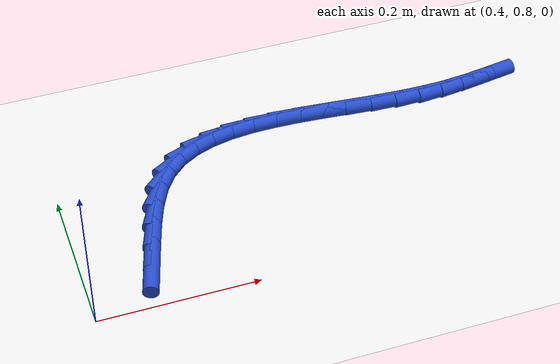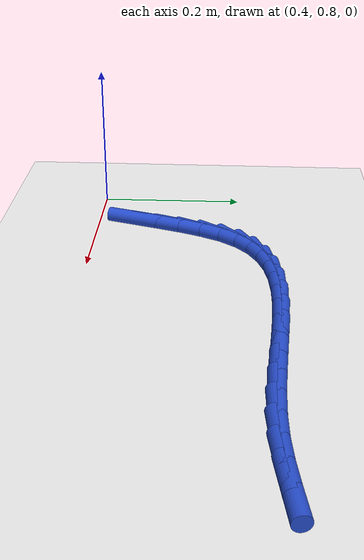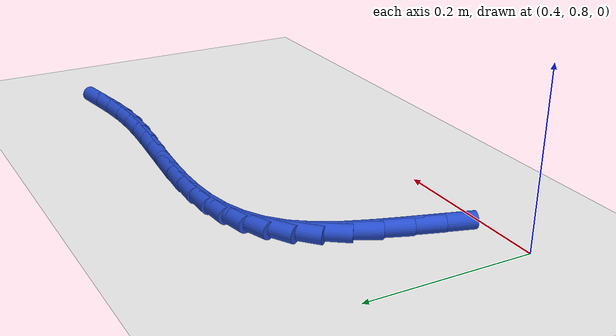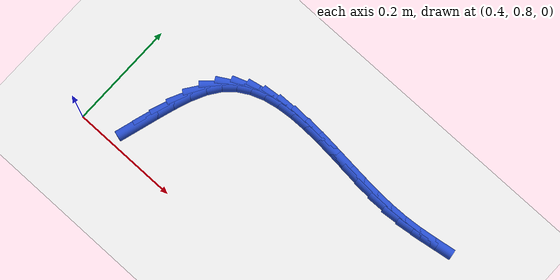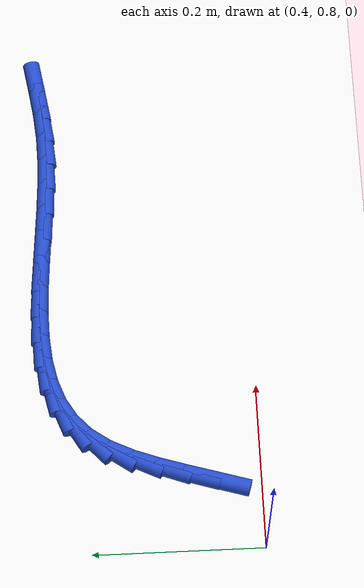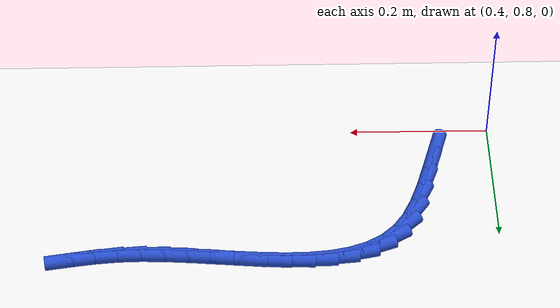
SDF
<sdf version="1.6">
 <world name="default">
  <model name="ground_plane">
   <static>1</static>
   <link name="link">
    <collision name="collision">
     <geometry><plane><normal>0 0 1</normal><size>100 100</size></plane></geometry>
     <surface><friction><ode><mu>100</mu><mu2>50</mu2></ode></friction></surface>
    </collision>
    <visual name="visual">
     <cast_shadows>0</cast_shadows>
     <geometry><plane><normal>0 0 1</normal><size>100 100</size></plane></geometry>
     <material>
      <script><uri>file://media/materials/scripts/gazebo.material</uri><name>Gazebo/WhiteGlow</name></script>
     </material>
    </visual>
   </link>
  </model>
  <model name="line">
   <link name="link_36">
    <pose>0.4813576338056106 0.852777875549548 0.01 0 1.57 1.2798308301384231</pose>
    <collision name="collision">
     <geometry><cylinder><radius>0.01</radius><length>0.08</length></cylinder></geometry>
    </collision>
    <visual name="visual">
     <material>
      <script><name>Gazebo/Blue</name><uri>file://media/materials/scripts/gazebo.material</uri></script>
     </material>
     <geometry><cylinder><radius>0.01</radius><length>0.08</length></cylinder></geometry>
    </visual>
   </link>
   <link name="link_37">
    <pose>0.4912489823276059 0.8858079889681314 0.01 0 1.57 1.2670746903792205</pose>
    <collision name="collision">
     <geometry><cylinder><radius>0.01</radius><length>0.08</length></cylinder></geometry>
    </collision>
    <visual name="visual">
     <material>
      <script><name>Gazebo/Blue</name><uri>file://media/materials/scripts/gazebo.material</uri></script>
     </material>
     <geometry><cylinder><radius>0.01</radius><length>0.08</length></cylinder></geometry>
    </visual>
   </link>
   <link name="link_38">
    <pose>0.5014949076815073 0.918498841700773 0.01 0 1.57 1.2161564289155946</pose>
    <collision name="collision">
     <geometry><cylinder><radius>0.01</radius><length>0.08</length></cylinder></geometry>
    </collision>
    <visual name="visual">
     <material>
      <script><name>Gazebo/Blue</name><uri>file://media/materials/scripts/gazebo.material</uri></script>
     </material>
     <geometry><cylinder><radius>0.01</radius><length>0.08</length></cylinder></geometry>
    </visual>
   </link>
   <link name="link_39">
    <pose>0.51295093238615 0.9494363542113032 0.01 0 1.57 1.1176722262518997</pose>
    <collision name="collision">
     <geometry><cylinder><radius>0.01</radius><length>0.08</length></cylinder></geometry>
    </collision>
    <visual name="visual">
     <material>
      <script><name>Gazebo/Blue</name><uri>file://media/materials/scripts/gazebo.material</uri></script>
     </material>
     <geometry><cylinder><radius>0.01</radius><length>0.08</length></cylinder></geometry>
    </visual>
   </link>
   <link name="link_40">
    <pose>0.5264725789603693 0.977206446963553 0.01 0 1.57 0.9545355267099519</pose>
    <collision name="collision">
     <geometry><cylinder><radius>0.01</radius><length>0.08</length></cylinder></geometry>
    </collision>
    <visual name="visual">
     <material>
      <script><name>Gazebo/Blue</name><uri>file://media/materials/scripts/gazebo.material</uri></script>
     </material>
     <geometry><cylinder><radius>0.01</radius><length>0.08</length></cylinder></geometry>
    </visual>
   </link>
   <link name="link_41">
    <pose>0.5429067270728724 1.0004093748785523 0.01 0 1.57 0.7395651632823327</pose>
    <collision name="collision">
     <geometry><cylinder><radius>0.01</radius><length>0.08</length></cylinder></geometry>
    </collision>
    <visual name="visual">
     <material>
      <script><name>Gazebo/Blue</name><uri>file://media/materials/scripts/gazebo.material</uri></script>
     </material>
     <geometry><cylinder><radius>0.01</radius><length>0.08</length></cylinder></geometry>
    </visual>
   </link>
   <link name="link_42">
    <pose>0.5626387755978016 1.018410774273498 0.01 0 1.57 0.5294057698637827</pose>
    <collision name="collision">
     <geometry><cylinder><radius>0.01</radius><length>0.08</length></cylinder></geometry>
    </collision>
    <visual name="visual">
     <material>
      <script><name>Gazebo/Blue</name><uri>file://media/materials/scripts/gazebo.material</uri></script>
     </material>
     <geometry><cylinder><radius>0.01</radius><length>0.08</length></cylinder></geometry>
    </visual>
   </link>
   <link name="link_43">
    <pose>0.585369855658512 1.0317111625107334 0.01 0 1.57 0.3475228646965846</pose>
    <collision name="collision">
     <geometry><cylinder><radius>0.01</radius><length>0.08</length></cylinder></geometry>
    </collision>
    <visual name="visual">
     <material>
      <script><name>Gazebo/Blue</name><uri>file://media/materials/scripts/gazebo.material</uri></script>
     </material>
     <geometry><cylinder><radius>0.01</radius><length>0.08</length></cylinder></geometry>
    </visual>
   </link>
   <link name="link_44">
    <pose>0.61074571939367 1.0409029048585532 0.01 0 1.57 0.2023321326701592</pose>
    <collision name="collision">
     <geometry><cylinder><radius>0.01</radius><length>0.08</length></cylinder></geometry>
    </collision>
    <visual name="visual">
     <material>
      <script><name>Gazebo/Blue</name><uri>file://media/materials/scripts/gazebo.material</uri></script>
     </material>
     <geometry><cylinder><radius>0.01</radius><length>0.08</length></cylinder></geometry>
    </visual>
   </link>
   <link name="link_45">
    <pose>0.6384121189419433 1.0465783665852537 0.01 0 1.57 0.09268290767409672</pose>
    <collision name="collision">
     <geometry><cylinder><radius>0.01</radius><length>0.08</length></cylinder></geometry>
    </collision>
    <visual name="visual">
     <material>
      <script><name>Gazebo/Blue</name><uri>file://media/materials/scripts/gazebo.material</uri></script>
     </material>
     <geometry><cylinder><radius>0.01</radius><length>0.08</length></cylinder></geometry>
    </visual>
   </link>
   <link name="link_46">
    <pose>0.6680148064419984 1.0493299129591303 0.01 0 1.57 0.013467197906035195</pose>
    <collision name="collision">
     <geometry><cylinder><radius>0.01</radius><length>0.08</length></cylinder></geometry>
    </collision>
    <visual name="visual">
     <material>
      <script><name>Gazebo/Blue</name><uri>file://media/materials/scripts/gazebo.material</uri></script>
     </material>
     <geometry><cylinder><radius>0.01</radius><length>0.08</length></cylinder></geometry>
    </visual>
   </link>
   <link name="link_47">
    <pose>0.699199534032503 1.0497499092484788 0.01 0 1.57 -0.04067751754340314</pose>
    <collision name="collision">
     <geometry><cylinder><radius>0.01</radius><length>0.08</length></cylinder></geometry>
    </collision>
    <visual name="visual">
     <material>
      <script><name>Gazebo/Blue</name><uri>file://media/materials/scripts/gazebo.material</uri></script>
     </material>
     <geometry><cylinder><radius>0.01</radius><length>0.08</length></cylinder></geometry>
    </visual>
   </link>
   <link name="link_48">
    <pose>0.7316120538521242 1.0484307207215953 0.01 0 1.57 -0.07395020302191643</pose>
    <collision name="collision">
     <geometry><cylinder><radius>0.01</radius><length>0.08</length></cylinder></geometry>
    </collision>
    <visual name="visual">
     <material>
      <script><name>Gazebo/Blue</name><uri>file://media/materials/scripts/gazebo.material</uri></script>
     </material>
     <geometry><cylinder><radius>0.01</radius><length>0.08</length></cylinder></geometry>
    </visual>
   </link>
   <link name="link_49">
    <pose>0.7648981180395286 1.0459647126467746 0.01 0 1.57 -0.08911199130429608</pose>
    <collision name="collision">
     <geometry><cylinder><radius>0.01</radius><length>0.08</length></cylinder></geometry>
    </collision>
    <visual name="visual">
     <material>
      <script><name>Gazebo/Blue</name><uri>file://media/materials/scripts/gazebo.material</uri></script>
     </material>
     <geometry><cylinder><radius>0.01</radius><length>0.08</length></cylinder></geometry>
    </visual>
   </link>
   <link name="link_50">
    <pose>0.7987034787333841 1.0429442502923134 0.01 0 1.57 -0.08757394837977431</pose>
    <collision name="collision">
     <geometry><cylinder><radius>0.01</radius><length>0.08</length></cylinder></geometry>
    </collision>
    <visual name="visual">
     <material>
      <script><name>Gazebo/Blue</name><uri>file://media/materials/scripts/gazebo.material</uri></script>
     </material>
     <geometry><cylinder><radius>0.01</radius><length>0.08</length></cylinder></geometry>
    </visual>
   </link>
   <link name="link_51">
    <pose>0.8326738880723573 1.0399616989265068 0.01 0 1.57 -0.0695204314073739</pose>
    <collision name="collision">
     <geometry><cylinder><radius>0.01</radius><length>0.08</length></cylinder></geometry>
    </collision>
    <visual name="visual">
     <material>
      <script><name>Gazebo/Blue</name><uri>file://media/materials/scripts/gazebo.material</uri></script>
     </material>
     <geometry><cylinder><radius>0.01</radius><length>0.08</length></cylinder></geometry>
    </visual>
   </link>
   <link name="link_52">
    <pose>0.8664550981951156 1.0376094238176508 0.01 0 1.57 -0.03397337373920289</pose>
    <collision name="collision">
     <geometry><cylinder><radius>0.01</radius><length>0.08</length></cylinder></geometry>
    </collision>
    <visual name="visual">
     <material>
      <script><name>Gazebo/Blue</name><uri>file://media/materials/scripts/gazebo.material</uri></script>
     </material>
     <geometry><cylinder><radius>0.01</radius><length>0.08</length></cylinder></geometry>
    </visual>
   </link>
   <link name="link_53">
    <pose>0.8996928612403259 1.036479790234041 0.01 0 1.57 0.02117701443042391</pose>
    <collision name="collision">
     <geometry><cylinder><radius>0.01</radius><length>0.08</length></cylinder></geometry>
    </collision>
    <visual name="visual">
     <material>
      <script><name>Gazebo/Blue</name><uri>file://media/materials/scripts/gazebo.material</uri></script>
     </material>
     <geometry><cylinder><radius>0.01</radius><length>0.08</length></cylinder></geometry>
    </visual>
   </link>
   <link name="link_54">
    <pose>0.93203308807381 1.0371647620829532 0.01 0 1.57 0.08793731890708004</pose>
    <collision name="collision">
     <geometry><cylinder><radius>0.01</radius><length>0.08</length></cylinder></geometry>
    </collision>
    <visual name="visual">
     <material>
      <script><name>Gazebo/Blue</name><uri>file://media/materials/scripts/gazebo.material</uri></script>
     </material>
     <geometry><cylinder><radius>0.01</radius><length>0.08</length></cylinder></geometry>
    </visual>
   </link>
   <link name="link_55">
    <pose>0.9632556798854693 1.039917492352317 0.01 0 1.57 0.1352688795808788</pose>
    <collision name="collision">
     <geometry><cylinder><radius>0.01</radius><length>0.08</length></cylinder></geometry>
    </collision>
    <visual name="visual">
     <material>
      <script><name>Gazebo/Blue</name><uri>file://media/materials/scripts/gazebo.material</uri></script>
     </material>
     <geometry><cylinder><radius>0.01</radius><length>0.08</length></cylinder></geometry>
    </visual>
   </link>
   <link name="link_56">
    <pose>0.9935181804309821 1.0440362186227528 0.01 0 1.57 0.15507944825660466</pose>
    <collision name="collision">
     <geometry><cylinder><radius>0.01</radius><length>0.08</length></cylinder></geometry>
    </collision>
    <visual name="visual">
     <material>
      <script><name>Gazebo/Blue</name><uri>file://media/materials/scripts/gazebo.material</uri></script>
     </material>
     <geometry><cylinder><radius>0.01</radius><length>0.08</length></cylinder></geometry>
    </visual>
   </link>
  </model>
 </world>
</sdf>
